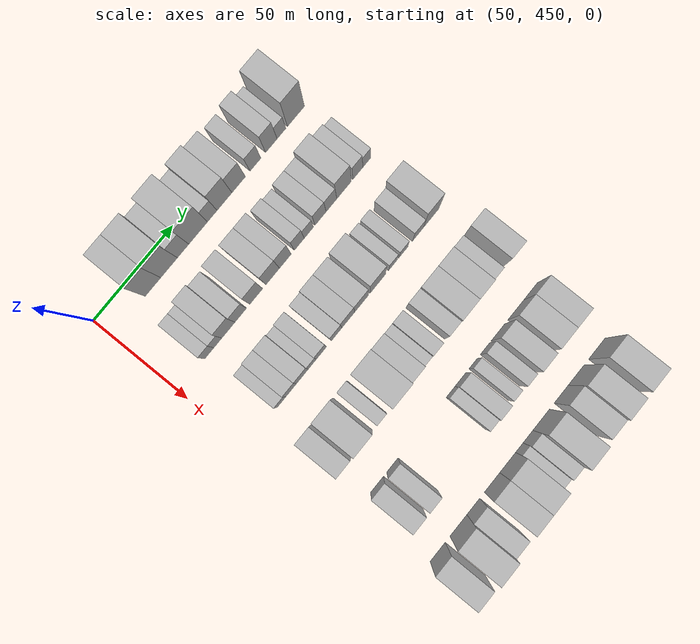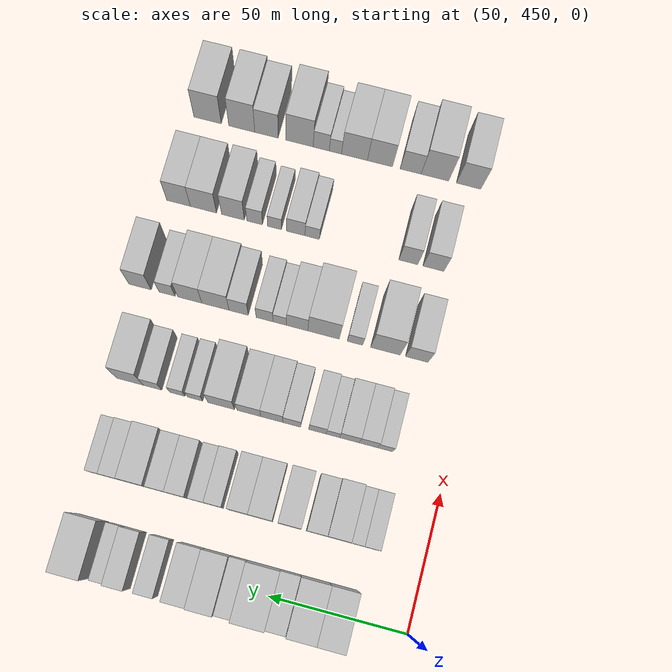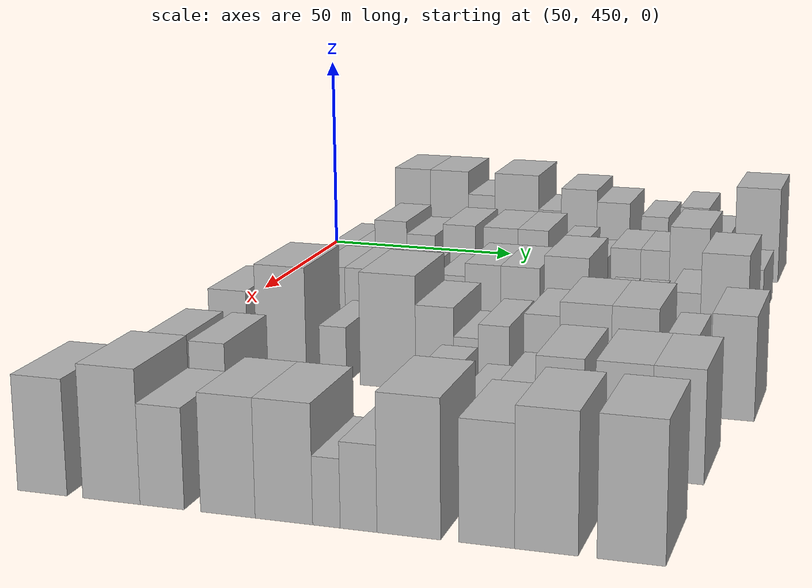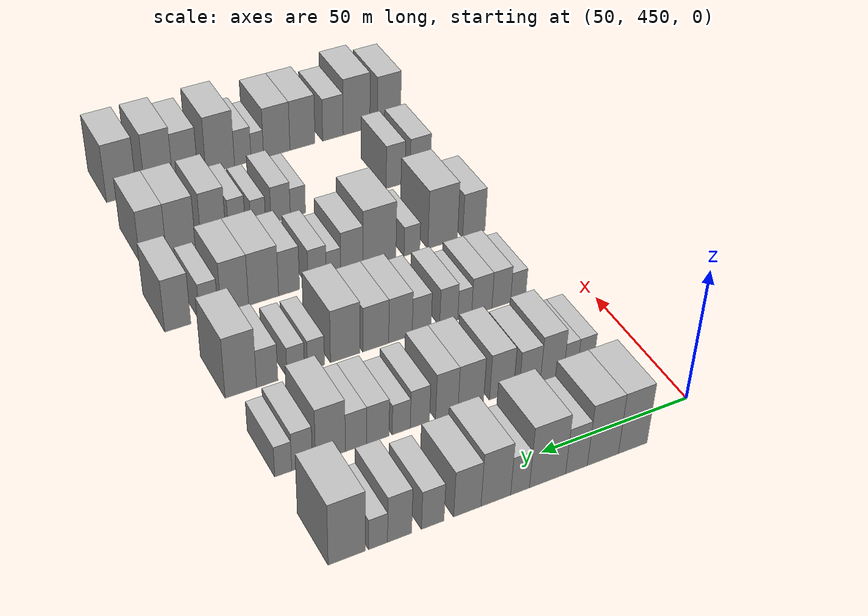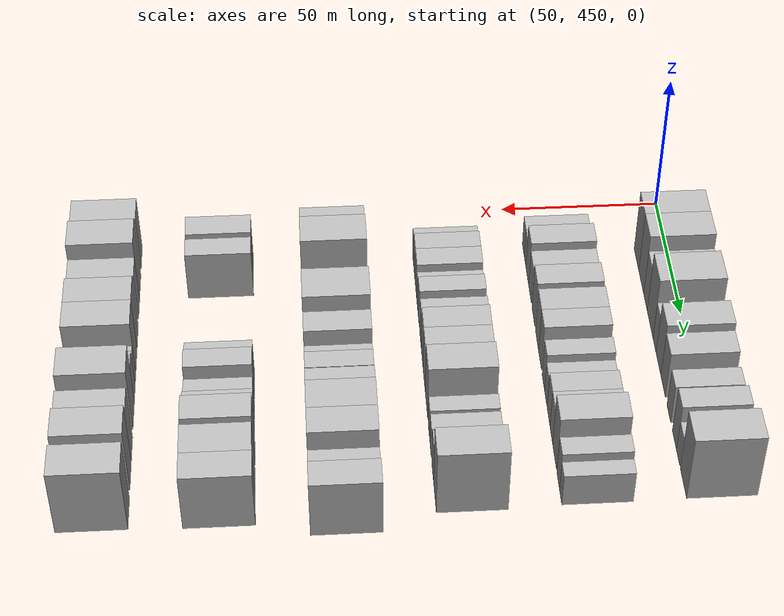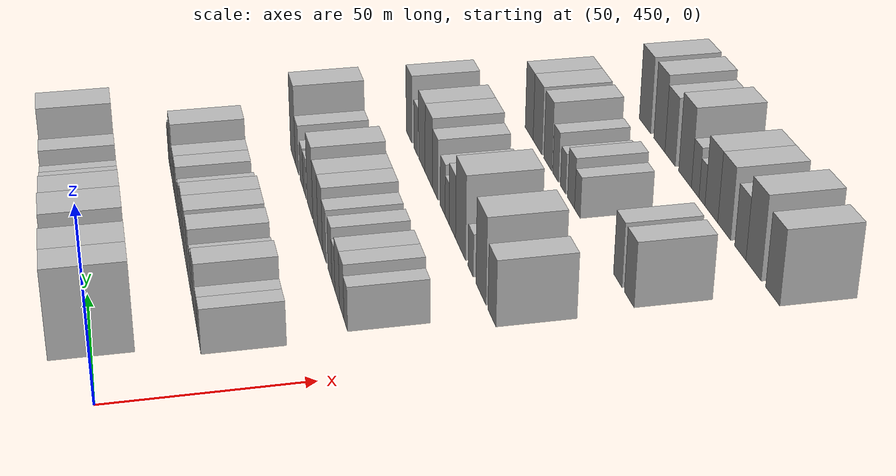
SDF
<sdf version="1.6">
 <world name="default">
  <model name="building_109">
   <static>1</static>
   <pose>50.0000 475.6765 0 0.000000 0.000000 0.000000</pose>
   <link name="link">
    <pose>0 0 12.00 0 0 0</pose>
    <collision name="collision"><geometry><box><size>20.0000 9.7938 24.0000</size></box></geometry></collision>
    <visual name="visual">
     <cast_shadows>0</cast_shadows>
     <geometry><box><size>20.0000 9.7938 24.0000</size></box></geometry>
     <material>
      <script>
       <uri>model://HANNAS_wall/materials/scripts</uri>
       <uri>model://HANNAS_wall/materials/textures</uri>
       <name>vrc/HANNAS_wall</name>
      </script>
     </material>
    </visual>
   </link>
  </model>
  <model name="building_110">
   <static>1</static>
   <pose>50.0000 485.7956 0 0.000000 0.000000 0.000000</pose>
   <link name="link">
    <pose>0 0 12.00 0 0 0</pose>
    <collision name="collision"><geometry><box><size>20.0000 10.4443 24.0000</size></box></geometry></collision>
    <visual name="visual">
     <cast_shadows>0</cast_shadows>
     <geometry><box><size>20.0000 10.4443 24.0000</size></box></geometry>
     <material>
      <script>
       <uri>model://HANNAS_wall/materials/scripts</uri>
       <uri>model://HANNAS_wall/materials/textures</uri>
       <name>vrc/HANNAS_wall</name>
      </script>
     </material>
    </visual>
   </link>
  </model>
  <model name="building_111">
   <static>1</static>
   <pose>50.0000 494.6215 0 0.000000 0.000000 0.000000</pose>
   <link name="link">
    <pose>0 0 9.00 0 0 0</pose>
    <collision name="collision"><geometry><box><size>20.0000 7.2075 18.0000</size></box></geometry></collision>
    <visual name="visual">
     <cast_shadows>0</cast_shadows>
     <geometry><box><size>20.0000 7.2075 18.0000</size></box></geometry>
     <material>
      <script>
       <uri>model://HANNAS_wall/materials/scripts</uri>
       <uri>model://HANNAS_wall/materials/textures</uri>
       <name>vrc/HANNAS_wall</name>
      </script>
     </material>
    </visual>
   </link>
  </model>
  <model name="building_112">
   <static>1</static>
   <pose>50.0000 504.1445 0 0.000000 0.000000 0.000000</pose>
   <link name="link">
    <pose>0 0 12.00 0 0 0</pose>
    <collision name="collision"><geometry><box><size>20.0000 11.8384 24.0000</size></box></geometry></collision>
    <visual name="visual">
     <cast_shadows>0</cast_shadows>
     <geometry><box><size>20.0000 11.8384 24.0000</size></box></geometry>
     <material>
      <script>
       <uri>model://HANNAS_wall/materials/scripts</uri>
       <uri>model://HANNAS_wall/materials/textures</uri>
       <name>vrc/HANNAS_wall</name>
      </script>
     </material>
    </visual>
   </link>
  </model>
  <model name="building_113">
   <static>1</static>
   <pose>50.0000 513.0983 0 0.000000 0.000000 0.000000</pose>
   <link name="link">
    <pose>0 0 7.50 0 0 0</pose>
    <collision name="collision"><geometry><box><size>20.0000 6.0691 15.0000</size></box></geometry></collision>
    <visual name="visual">
     <cast_shadows>0</cast_shadows>
     <geometry><box><size>20.0000 6.0691 15.0000</size></box></geometry>
     <material>
      <script>
       <uri>model://HANNAS_wall/materials/scripts</uri>
       <uri>model://HANNAS_wall/materials/textures</uri>
       <name>vrc/HANNAS_wall</name>
      </script>
     </material>
    </visual>
   </link>
  </model>
  <model name="building_114">
   <static>1</static>
   <pose>50.0000 520.8647 0 0.000000 0.000000 0.000000</pose>
   <link name="link">
    <pose>0 0 10.50 0 0 0</pose>
    <collision name="collision"><geometry><box><size>20.0000 9.4637 21.0000</size></box></geometry></collision>
    <visual name="visual">
     <cast_shadows>0</cast_shadows>
     <geometry><box><size>20.0000 9.4637 21.0000</size></box></geometry>
     <material>
      <script>
       <uri>model://HANNAS_wall/materials/scripts</uri>
       <uri>model://HANNAS_wall/materials/textures</uri>
       <name>vrc/HANNAS_wall</name>
      </script>
     </material>
    </visual>
   </link>
  </model>
  <model name="building_115">
   <static>1</static>
   <pose>50.0000 529.9032 0 0.000000 0.000000 0.000000</pose>
   <link name="link">
    <pose>0 0 9.00 0 0 0</pose>
    <collision name="collision"><geometry><box><size>20.0000 8.6132 18.0000</size></box></geometry></collision>
    <visual name="visual">
     <cast_shadows>0</cast_shadows>
     <geometry><box><size>20.0000 8.6132 18.0000</size></box></geometry>
     <material>
      <script>
       <uri>model://HANNAS_wall/materials/scripts</uri>
       <uri>model://HANNAS_wall/materials/textures</uri>
       <name>vrc/HANNAS_wall</name>
      </script>
     </material>
    </visual>
   </link>
  </model>
  <model name="building_116">
   <static>1</static>
   <pose>50.0000 540.7052 0 0.000000 0.000000 0.000000</pose>
   <link name="link">
    <pose>0 0 7.50 0 0 0</pose>
    <collision name="collision"><geometry><box><size>20.0000 6.9908 15.0000</size></box></geometry></collision>
    <visual name="visual">
     <cast_shadows>0</cast_shadows>
     <geometry><box><size>20.0000 6.9908 15.0000</size></box></geometry>
     <material>
      <script>
       <uri>model://HANNAS_wall/materials/scripts</uri>
       <uri>model://HANNAS_wall/materials/textures</uri>
       <name>vrc/HANNAS_wall</name>
      </script>
     </material>
    </visual>
   </link>
  </model>
  <model name="building_117">
   <static>1</static>
   <pose>50.0000 550.8893 0 0.000000 0.000000 0.000000</pose>
   <link name="link">
    <pose>0 0 9.00 0 0 0</pose>
    <collision name="collision"><geometry><box><size>20.0000 7.3773 18.0000</size></box></geometry></collision>
    <visual name="visual">
     <cast_shadows>0</cast_shadows>
     <geometry><box><size>20.0000 7.3773 18.0000</size></box></geometry>
     <material>
      <script>
       <uri>model://HANNAS_wall/materials/scripts</uri>
       <uri>model://HANNAS_wall/materials/textures</uri>
       <name>vrc/HANNAS_wall</name>
      </script>
     </material>
    </visual>
   </link>
  </model>
  <model name="building_118">
   <static>1</static>
   <pose>50.0000 557.4244 0 0.000000 0.000000 0.000000</pose>
   <link name="link">
    <pose>0 0 6.00 0 0 0</pose>
    <collision name="collision"><geometry><box><size>20.0000 5.6929 12.0000</size></box></geometry></collision>
    <visual name="visual">
     <cast_shadows>0</cast_shadows>
     <geometry><box><size>20.0000 5.6929 12.0000</size></box></geometry>
     <material>
      <script>
       <uri>model://HANNAS_wall/materials/scripts</uri>
       <uri>model://HANNAS_wall/materials/textures</uri>
       <name>vrc/HANNAS_wall</name>
      </script>
     </material>
    </visual>
   </link>
  </model>
  <model name="building_119">
   <static>1</static>
   <pose>50.0000 566.7959 0 0.000000 0.000000 0.000000</pose>
   <link name="link">
    <pose>0 0 12.00 0 0 0</pose>
    <collision name="collision"><geometry><box><size>20.0000 11.0499 24.0000</size></box></geometry></collision>
    <visual name="visual">
     <cast_shadows>0</cast_shadows>
     <geometry><box><size>20.0000 11.0499 24.0000</size></box></geometry>
     <material>
      <script>
       <uri>model://HANNAS_wall/materials/scripts</uri>
       <uri>model://HANNAS_wall/materials/textures</uri>
       <name>vrc/HANNAS_wall</name>
      </script>
     </material>
    </visual>
   </link>
  </model>
  <model name="building_242">
   <static>1</static>
   <pose>85.0000 469.5449 0 0.000000 0.000000 0.000000</pose>
   <link name="link">
    <pose>0 0 6.00 0 0 0</pose>
    <collision name="collision"><geometry><box><size>20.0000 5.7727 12.0000</size></box></geometry></collision>
    <visual name="visual">
     <cast_shadows>0</cast_shadows>
     <geometry><box><size>20.0000 5.7727 12.0000</size></box></geometry>
     <material>
      <script>
       <uri>model://HANNAS_wall/materials/scripts</uri>
       <uri>model://HANNAS_wall/materials/textures</uri>
       <name>vrc/HANNAS_wall</name>
      </script>
     </material>
    </visual>
   </link>
  </model>
  <model name="building_243">
   <static>1</static>
   <pose>85.0000 474.9047 0 0.000000 0.000000 0.000000</pose>
   <link name="link">
    <pose>0 0 6.00 0 0 0</pose>
    <collision name="collision"><geometry><box><size>20.0000 4.9469 12.0000</size></box></geometry></collision>
    <visual name="visual">
     <cast_shadows>0</cast_shadows>
     <geometry><box><size>20.0000 4.9469 12.0000</size></box></geometry>
     <material>
      <script>
       <uri>model://HANNAS_wall/materials/scripts</uri>
       <uri>model://HANNAS_wall/materials/textures</uri>
       <name>vrc/HANNAS_wall</name>
      </script>
     </material>
    </visual>
   </link>
  </model>
  <model name="building_244">
   <static>1</static>
   <pose>85.0000 481.4790 0 0.000000 0.000000 0.000000</pose>
   <link name="link">
    <pose>0 0 9.00 0 0 0</pose>
    <collision name="collision"><geometry><box><size>20.0000 8.2018 18.0000</size></box></geometry></collision>
    <visual name="visual">
     <cast_shadows>0</cast_shadows>
     <geometry><box><size>20.0000 8.2018 18.0000</size></box></geometry>
     <material>
      <script>
       <uri>model://HANNAS_wall/materials/scripts</uri>
       <uri>model://HANNAS_wall/materials/textures</uri>
       <name>vrc/HANNAS_wall</name>
      </script>
     </material>
    </visual>
   </link>
  </model>
  <model name="building_245">
   <static>1</static>
   <pose>85.0000 489.2373 0 0.000000 0.000000 0.000000</pose>
   <link name="link">
    <pose>0 0 7.50 0 0 0</pose>
    <collision name="collision"><geometry><box><size>20.0000 7.3146 15.0000</size></box></geometry></collision>
    <visual name="visual">
     <cast_shadows>0</cast_shadows>
     <geometry><box><size>20.0000 7.3146 15.0000</size></box></geometry>
     <material>
      <script>
       <uri>model://HANNAS_wall/materials/scripts</uri>
       <uri>model://HANNAS_wall/materials/textures</uri>
       <name>vrc/HANNAS_wall</name>
      </script>
     </material>
    </visual>
   </link>
  </model>
  <model name="building_246">
   <static>1</static>
   <pose>85.0000 499.0141 0 0.000000 0.000000 0.000000</pose>
   <link name="link">
    <pose>0 0 9.00 0 0 0</pose>
    <collision name="collision"><geometry><box><size>20.0000 8.2391 18.0000</size></box></geometry></collision>
    <visual name="visual">
     <cast_shadows>0</cast_shadows>
     <geometry><box><size>20.0000 8.2391 18.0000</size></box></geometry>
     <material>
      <script>
       <uri>model://HANNAS_wall/materials/scripts</uri>
       <uri>model://HANNAS_wall/materials/textures</uri>
       <name>vrc/HANNAS_wall</name>
      </script>
     </material>
    </visual>
   </link>
  </model>
  <model name="building_247">
   <static>1</static>
   <pose>85.0000 509.4492 0 0.000000 0.000000 0.000000</pose>
   <link name="link">
    <pose>0 0 9.00 0 0 0</pose>
    <collision name="collision"><geometry><box><size>20.0000 8.6312 18.0000</size></box></geometry></collision>
    <visual name="visual">
     <cast_shadows>0</cast_shadows>
     <geometry><box><size>20.0000 8.6312 18.0000</size></box></geometry>
     <material>
      <script>
       <uri>model://HANNAS_wall/materials/scripts</uri>
       <uri>model://HANNAS_wall/materials/textures</uri>
       <name>vrc/HANNAS_wall</name>
      </script>
     </material>
    </visual>
   </link>
  </model>
  <model name="building_248">
   <static>1</static>
   <pose>85.0000 517.5105 0 0.000000 0.000000 0.000000</pose>
   <link name="link">
    <pose>0 0 9.00 0 0 0</pose>
    <collision name="collision"><geometry><box><size>20.0000 7.4914 18.0000</size></box></geometry></collision>
    <visual name="visual">
     <cast_shadows>0</cast_shadows>
     <geometry><box><size>20.0000 7.4914 18.0000</size></box></geometry>
     <material>
      <script>
       <uri>model://HANNAS_wall/materials/scripts</uri>
       <uri>model://HANNAS_wall/materials/textures</uri>
       <name>vrc/HANNAS_wall</name>
      </script>
     </material>
    </visual>
   </link>
  </model>
  <model name="building_249">
   <static>1</static>
   <pose>85.0000 526.4280 0 0.000000 0.000000 0.000000</pose>
   <link name="link">
    <pose>0 0 7.50 0 0 0</pose>
    <collision name="collision"><geometry><box><size>20.0000 6.3435 15.0000</size></box></geometry></collision>
    <visual name="visual">
     <cast_shadows>0</cast_shadows>
     <geometry><box><size>20.0000 6.3435 15.0000</size></box></geometry>
     <material>
      <script>
       <uri>model://HANNAS_wall/materials/scripts</uri>
       <uri>model://HANNAS_wall/materials/textures</uri>
       <name>vrc/HANNAS_wall</name>
      </script>
     </material>
    </visual>
   </link>
  </model>
  <model name="building_250">
   <static>1</static>
   <pose>85.0000 532.5392 0 0.000000 0.000000 0.000000</pose>
   <link name="link">
    <pose>0 0 6.00 0 0 0</pose>
    <collision name="collision"><geometry><box><size>20.0000 5.8789 12.0000</size></box></geometry></collision>
    <visual name="visual">
     <cast_shadows>0</cast_shadows>
     <geometry><box><size>20.0000 5.8789 12.0000</size></box></geometry>
     <material>
      <script>
       <uri>model://HANNAS_wall/materials/scripts</uri>
       <uri>model://HANNAS_wall/materials/textures</uri>
       <name>vrc/HANNAS_wall</name>
      </script>
     </material>
    </visual>
   </link>
  </model>
  <model name="building_251">
   <static>1</static>
   <pose>85.0000 540.0758 0 0.000000 0.000000 0.000000</pose>
   <link name="link">
    <pose>0 0 7.50 0 0 0</pose>
    <collision name="collision"><geometry><box><size>20.0000 7.1943 15.0000</size></box></geometry></collision>
    <visual name="visual">
     <cast_shadows>0</cast_shadows>
     <geometry><box><size>20.0000 7.1943 15.0000</size></box></geometry>
     <material>
      <script>
       <uri>model://HANNAS_wall/materials/scripts</uri>
       <uri>model://HANNAS_wall/materials/textures</uri>
       <name>vrc/HANNAS_wall</name>
      </script>
     </material>
    </visual>
   </link>
  </model>
  <model name="building_252">
   <static>1</static>
   <pose>85.0000 547.1020 0 0.000000 0.000000 0.000000</pose>
   <link name="link">
    <pose>0 0 7.50 0 0 0</pose>
    <collision name="collision"><geometry><box><size>20.0000 6.8582 15.0000</size></box></geometry></collision>
    <visual name="visual">
     <cast_shadows>0</cast_shadows>
     <geometry><box><size>20.0000 6.8582 15.0000</size></box></geometry>
     <material>
      <script>
       <uri>model://HANNAS_wall/materials/scripts</uri>
       <uri>model://HANNAS_wall/materials/textures</uri>
       <name>vrc/HANNAS_wall</name>
      </script>
     </material>
    </visual>
   </link>
  </model>
  <model name="building_253">
   <static>1</static>
   <pose>85.0000 555.2245 0 0.000000 0.000000 0.000000</pose>
   <link name="link">
    <pose>0 0 10.50 0 0 0</pose>
    <collision name="collision"><geometry><box><size>20.0000 9.3867 21.0000</size></box></geometry></collision>
    <visual name="visual">
     <cast_shadows>0</cast_shadows>
     <geometry><box><size>20.0000 9.3867 21.0000</size></box></geometry>
     <material>
      <script>
       <uri>model://HANNAS_wall/materials/scripts</uri>
       <uri>model://HANNAS_wall/materials/textures</uri>
       <name>vrc/HANNAS_wall</name>
      </script>
     </material>
    </visual>
   </link>
  </model>
  <model name="building_254">
   <static>1</static>
   <pose>85.0000 564.1269 0 0.000000 0.000000 0.000000</pose>
   <link name="link">
    <pose>0 0 7.50 0 0 0</pose>
    <collision name="collision"><geometry><box><size>20.0000 6.4183 15.0000</size></box></geometry></collision>
    <visual name="visual">
     <cast_shadows>0</cast_shadows>
     <geometry><box><size>20.0000 6.4183 15.0000</size></box></geometry>
     <material>
      <script>
       <uri>model://HANNAS_wall/materials/scripts</uri>
       <uri>model://HANNAS_wall/materials/textures</uri>
       <name>vrc/HANNAS_wall</name>
      </script>
     </material>
    </visual>
   </link>
  </model>
  <model name="building_255">
   <static>1</static>
   <pose>85.0000 569.9701 0 0.000000 0.000000 0.000000</pose>
   <link name="link">
    <pose>0 0 6.00 0 0 0</pose>
    <collision name="collision"><geometry><box><size>20.0000 5.2680 12.0000</size></box></geometry></collision>
    <visual name="visual">
     <cast_shadows>0</cast_shadows>
     <geometry><box><size>20.0000 5.2680 12.0000</size></box></geometry>
     <material>
      <script>
       <uri>model://HANNAS_wall/materials/scripts</uri>
       <uri>model://HANNAS_wall/materials/textures</uri>
       <name>vrc/HANNAS_wall</name>
      </script>
     </material>
    </visual>
   </link>
  </model>
  <model name="building_369">
   <static>1</static>
   <pose>120.0000 472.8798 0 0.000000 0.000000 0.000000</pose>
   <link name="link">
    <pose>0 0 6.00 0 0 0</pose>
    <collision name="collision"><geometry><box><size>20.0000 5.5478 12.0000</size></box></geometry></collision>
    <visual name="visual">
     <cast_shadows>0</cast_shadows>
     <geometry><box><size>20.0000 5.5478 12.0000</size></box></geometry>
     <material>
      <script>
       <uri>model://HANNAS_wall/materials/scripts</uri>
       <uri>model://HANNAS_wall/materials/textures</uri>
       <name>vrc/HANNAS_wall</name>
      </script>
     </material>
    </visual>
   </link>
  </model>
  <model name="building_370">
   <static>1</static>
   <pose>120.0000 479.0655 0 0.000000 0.000000 0.000000</pose>
   <link name="link">
    <pose>0 0 7.50 0 0 0</pose>
    <collision name="collision"><geometry><box><size>20.0000 6.8237 15.0000</size></box></geometry></collision>
    <visual name="visual">
     <cast_shadows>0</cast_shadows>
     <geometry><box><size>20.0000 6.8237 15.0000</size></box></geometry>
     <material>
      <script>
       <uri>model://HANNAS_wall/materials/scripts</uri>
       <uri>model://HANNAS_wall/materials/textures</uri>
       <name>vrc/HANNAS_wall</name>
      </script>
     </material>
    </visual>
   </link>
  </model>
  <model name="building_371">
   <static>1</static>
   <pose>120.0000 486.1355 0 0.000000 0.000000 0.000000</pose>
   <link name="link">
    <pose>0 0 7.50 0 0 0</pose>
    <collision name="collision"><geometry><box><size>20.0000 7.3163 15.0000</size></box></geometry></collision>
    <visual name="visual">
     <cast_shadows>0</cast_shadows>
     <geometry><box><size>20.0000 7.3163 15.0000</size></box></geometry>
     <material>
      <script>
       <uri>model://HANNAS_wall/materials/scripts</uri>
       <uri>model://HANNAS_wall/materials/textures</uri>
       <name>vrc/HANNAS_wall</name>
      </script>
     </material>
    </visual>
   </link>
  </model>
  <model name="building_372">
   <static>1</static>
   <pose>120.0000 492.2712 0 0.000000 0.000000 0.000000</pose>
   <link name="link">
    <pose>0 0 6.00 0 0 0</pose>
    <collision name="collision"><geometry><box><size>20.0000 4.9551 12.0000</size></box></geometry></collision>
    <visual name="visual">
     <cast_shadows>0</cast_shadows>
     <geometry><box><size>20.0000 4.9551 12.0000</size></box></geometry>
     <material>
      <script>
       <uri>model://HANNAS_wall/materials/scripts</uri>
       <uri>model://HANNAS_wall/materials/textures</uri>
       <name>vrc/HANNAS_wall</name>
      </script>
     </material>
    </visual>
   </link>
  </model>
  <model name="building_373">
   <static>1</static>
   <pose>120.0000 497.9798 0 0.000000 0.000000 0.000000</pose>
   <link name="link">
    <pose>0 0 7.50 0 0 0</pose>
    <collision name="collision"><geometry><box><size>20.0000 6.4620 15.0000</size></box></geometry></collision>
    <visual name="visual">
     <cast_shadows>0</cast_shadows>
     <geometry><box><size>20.0000 6.4620 15.0000</size></box></geometry>
     <material>
      <script>
       <uri>model://HANNAS_wall/materials/scripts</uri>
       <uri>model://HANNAS_wall/materials/textures</uri>
       <name>vrc/HANNAS_wall</name>
      </script>
     </material>
    </visual>
   </link>
  </model>
  <model name="building_374">
   <static>1</static>
   <pose>120.0000 507.5246 0 0.000000 0.000000 0.000000</pose>
   <link name="link">
    <pose>0 0 7.50 0 0 0</pose>
    <collision name="collision"><geometry><box><size>20.0000 6.6276 15.0000</size></box></geometry></collision>
    <visual name="visual">
     <cast_shadows>0</cast_shadows>
     <geometry><box><size>20.0000 6.6276 15.0000</size></box></geometry>
     <material>
      <script>
       <uri>model://HANNAS_wall/materials/scripts</uri>
       <uri>model://HANNAS_wall/materials/textures</uri>
       <name>vrc/HANNAS_wall</name>
      </script>
     </material>
    </visual>
   </link>
  </model>
  <model name="building_375">
   <static>1</static>
   <pose>120.0000 514.9357 0 0.000000 0.000000 0.000000</pose>
   <link name="link">
    <pose>0 0 9.00 0 0 0</pose>
    <collision name="collision"><geometry><box><size>20.0000 8.1946 18.0000</size></box></geometry></collision>
    <visual name="visual">
     <cast_shadows>0</cast_shadows>
     <geometry><box><size>20.0000 8.1946 18.0000</size></box></geometry>
     <material>
      <script>
       <uri>model://HANNAS_wall/materials/scripts</uri>
       <uri>model://HANNAS_wall/materials/textures</uri>
       <name>vrc/HANNAS_wall</name>
      </script>
     </material>
    </visual>
   </link>
  </model>
  <model name="building_376">
   <static>1</static>
   <pose>120.0000 523.4618 0 0.000000 0.000000 0.000000</pose>
   <link name="link">
    <pose>0 0 9.00 0 0 0</pose>
    <collision name="collision"><geometry><box><size>20.0000 8.8576 18.0000</size></box></geometry></collision>
    <visual name="visual">
     <cast_shadows>0</cast_shadows>
     <geometry><box><size>20.0000 8.8576 18.0000</size></box></geometry>
     <material>
      <script>
       <uri>model://HANNAS_wall/materials/scripts</uri>
       <uri>model://HANNAS_wall/materials/textures</uri>
       <name>vrc/HANNAS_wall</name>
      </script>
     </material>
    </visual>
   </link>
  </model>
  <model name="building_377">
   <static>1</static>
   <pose>120.0000 533.8659 0 0.000000 0.000000 0.000000</pose>
   <link name="link">
    <pose>0 0 10.50 0 0 0</pose>
    <collision name="collision"><geometry><box><size>20.0000 9.9507 21.0000</size></box></geometry></collision>
    <visual name="visual">
     <cast_shadows>0</cast_shadows>
     <geometry><box><size>20.0000 9.9507 21.0000</size></box></geometry>
     <material>
      <script>
       <uri>model://HANNAS_wall/materials/scripts</uri>
       <uri>model://HANNAS_wall/materials/textures</uri>
       <name>vrc/HANNAS_wall</name>
      </script>
     </material>
    </visual>
   </link>
  </model>
  <model name="building_378">
   <static>1</static>
   <pose>120.0000 543.6728 0 0.000000 0.000000 0.000000</pose>
   <link name="link">
    <pose>0 0 6.00 0 0 0</pose>
    <collision name="collision"><geometry><box><size>20.0000 5.6633 12.0000</size></box></geometry></collision>
    <visual name="visual">
     <cast_shadows>0</cast_shadows>
     <geometry><box><size>20.0000 5.6633 12.0000</size></box></geometry>
     <material>
      <script>
       <uri>model://HANNAS_wall/materials/scripts</uri>
       <uri>model://HANNAS_wall/materials/textures</uri>
       <name>vrc/HANNAS_wall</name>
      </script>
     </material>
    </visual>
   </link>
  </model>
  <model name="building_379">
   <static>1</static>
   <pose>120.0000 550.3977 0 0.000000 0.000000 0.000000</pose>
   <link name="link">
    <pose>0 0 6.00 0 0 0</pose>
    <collision name="collision"><geometry><box><size>20.0000 5.7863 12.0000</size></box></geometry></collision>
    <visual name="visual">
     <cast_shadows>0</cast_shadows>
     <geometry><box><size>20.0000 5.7863 12.0000</size></box></geometry>
     <material>
      <script>
       <uri>model://HANNAS_wall/materials/scripts</uri>
       <uri>model://HANNAS_wall/materials/textures</uri>
       <name>vrc/HANNAS_wall</name>
      </script>
     </material>
    </visual>
   </link>
  </model>
  <model name="building_380">
   <static>1</static>
   <pose>120.0000 559.7766 0 0.000000 0.000000 0.000000</pose>
   <link name="link">
    <pose>0 0 7.50 0 0 0</pose>
    <collision name="collision"><geometry><box><size>20.0000 6.9716 15.0000</size></box></geometry></collision>
    <visual name="visual">
     <cast_shadows>0</cast_shadows>
     <geometry><box><size>20.0000 6.9716 15.0000</size></box></geometry>
     <material>
      <script>
       <uri>model://HANNAS_wall/materials/scripts</uri>
       <uri>model://HANNAS_wall/materials/textures</uri>
       <name>vrc/HANNAS_wall</name>
      </script>
     </material>
    </visual>
   </link>
  </model>
  <model name="building_381">
   <static>1</static>
   <pose>120.0000 568.3370 0 0.000000 0.000000 0.000000</pose>
   <link name="link">
    <pose>0 0 12.00 0 0 0</pose>
    <collision name="collision"><geometry><box><size>20.0000 10.1492 24.0000</size></box></geometry></collision>
    <visual name="visual">
     <cast_shadows>0</cast_shadows>
     <geometry><box><size>20.0000 10.1492 24.0000</size></box></geometry>
     <material>
      <script>
       <uri>model://HANNAS_wall/materials/scripts</uri>
       <uri>model://HANNAS_wall/materials/textures</uri>
       <name>vrc/HANNAS_wall</name>
      </script>
     </material>
    </visual>
   </link>
  </model>
  <model name="building_503">
   <static>1</static>
   <pose>155.0000 469.5367 0 0.000000 0.000000 0.000000</pose>
   <link name="link">
    <pose>0 0 9.00 0 0 0</pose>
    <collision name="collision"><geometry><box><size>20.0000 8.5126 18.0000</size></box></geometry></collision>
    <visual name="visual">
     <cast_shadows>0</cast_shadows>
     <geometry><box><size>20.0000 8.5126 18.0000</size></box></geometry>
     <material>
      <script>
       <uri>model://HANNAS_wall/materials/scripts</uri>
       <uri>model://HANNAS_wall/materials/textures</uri>
       <name>vrc/HANNAS_wall</name>
      </script>
     </material>
    </visual>
   </link>
  </model>
  <model name="building_504">
   <static>1</static>
   <pose>155.0000 481.3526 0 0.000000 0.000000 0.000000</pose>
   <link name="link">
    <pose>0 0 12.00 0 0 0</pose>
    <collision name="collision"><geometry><box><size>20.0000 11.1191 24.0000</size></box></geometry></collision>
    <visual name="visual">
     <cast_shadows>0</cast_shadows>
     <geometry><box><size>20.0000 11.1191 24.0000</size></box></geometry>
     <material>
      <script>
       <uri>model://HANNAS_wall/materials/scripts</uri>
       <uri>model://HANNAS_wall/materials/textures</uri>
       <name>vrc/HANNAS_wall</name>
      </script>
     </material>
    </visual>
   </link>
  </model>
  <model name="building_505">
   <static>1</static>
   <pose>155.0000 492.8375 0 0.000000 0.000000 0.000000</pose>
   <link name="link">
    <pose>0 0 6.00 0 0 0</pose>
    <collision name="collision"><geometry><box><size>20.0000 5.8509 12.0000</size></box></geometry></collision>
    <visual name="visual">
     <cast_shadows>0</cast_shadows>
     <geometry><box><size>20.0000 5.8509 12.0000</size></box></geometry>
     <material>
      <script>
       <uri>model://HANNAS_wall/materials/scripts</uri>
       <uri>model://HANNAS_wall/materials/textures</uri>
       <name>vrc/HANNAS_wall</name>
      </script>
     </material>
    </visual>
   </link>
  </model>
  <model name="building_506">
   <static>1</static>
   <pose>155.0000 504.7531 0 0.000000 0.000000 0.000000</pose>
   <link name="link">
    <pose>0 0 12.00 0 0 0</pose>
    <collision name="collision"><geometry><box><size>20.0000 11.9803 24.0000</size></box></geometry></collision>
    <visual name="visual">
     <cast_shadows>0</cast_shadows>
     <geometry><box><size>20.0000 11.9803 24.0000</size></box></geometry>
     <material>
      <script>
       <uri>model://HANNAS_wall/materials/scripts</uri>
       <uri>model://HANNAS_wall/materials/textures</uri>
       <name>vrc/HANNAS_wall</name>
      </script>
     </material>
    </visual>
   </link>
  </model>
  <model name="building_507">
   <static>1</static>
   <pose>155.0000 514.7688 0 0.000000 0.000000 0.000000</pose>
   <link name="link">
    <pose>0 0 9.00 0 0 0</pose>
    <collision name="collision"><geometry><box><size>20.0000 8.0512 18.0000</size></box></geometry></collision>
    <visual name="visual">
     <cast_shadows>0</cast_shadows>
     <geometry><box><size>20.0000 8.0512 18.0000</size></box></geometry>
     <material>
      <script>
       <uri>model://HANNAS_wall/materials/scripts</uri>
       <uri>model://HANNAS_wall/materials/textures</uri>
       <name>vrc/HANNAS_wall</name>
      </script>
     </material>
    </visual>
   </link>
  </model>
  <model name="building_508">
   <static>1</static>
   <pose>155.0000 521.3901 0 0.000000 0.000000 0.000000</pose>
   <link name="link">
    <pose>0 0 6.00 0 0 0</pose>
    <collision name="collision"><geometry><box><size>20.0000 5.1913 12.0000</size></box></geometry></collision>
    <visual name="visual">
     <cast_shadows>0</cast_shadows>
     <geometry><box><size>20.0000 5.1913 12.0000</size></box></geometry>
     <material>
      <script>
       <uri>model://HANNAS_wall/materials/scripts</uri>
       <uri>model://HANNAS_wall/materials/textures</uri>
       <name>vrc/HANNAS_wall</name>
      </script>
     </material>
    </visual>
   </link>
  </model>
  <model name="building_509">
   <static>1</static>
   <pose>155.0000 527.1887 0 0.000000 0.000000 0.000000</pose>
   <link name="link">
    <pose>0 0 7.50 0 0 0</pose>
    <collision name="collision"><geometry><box><size>20.0000 6.4058 15.0000</size></box></geometry></collision>
    <visual name="visual">
     <cast_shadows>0</cast_shadows>
     <geometry><box><size>20.0000 6.4058 15.0000</size></box></geometry>
     <material>
      <script>
       <uri>model://HANNAS_wall/materials/scripts</uri>
       <uri>model://HANNAS_wall/materials/textures</uri>
       <name>vrc/HANNAS_wall</name>
      </script>
     </material>
    </visual>
   </link>
  </model>
  <model name="building_510">
   <static>1</static>
   <pose>155.0000 537.0555 0 0.000000 0.000000 0.000000</pose>
   <link name="link">
    <pose>0 0 9.00 0 0 0</pose>
    <collision name="collision"><geometry><box><size>20.0000 7.3277 18.0000</size></box></geometry></collision>
    <visual name="visual">
     <cast_shadows>0</cast_shadows>
     <geometry><box><size>20.0000 7.3277 18.0000</size></box></geometry>
     <material>
      <script>
       <uri>model://HANNAS_wall/materials/scripts</uri>
       <uri>model://HANNAS_wall/materials/textures</uri>
       <name>vrc/HANNAS_wall</name>
      </script>
     </material>
    </visual>
   </link>
  </model>
  <model name="building_511">
   <static>1</static>
   <pose>155.0000 545.9219 0 0.000000 0.000000 0.000000</pose>
   <link name="link">
    <pose>0 0 10.50 0 0 0</pose>
    <collision name="collision"><geometry><box><size>20.0000 10.4052 21.0000</size></box></geometry></collision>
    <visual name="visual">
     <cast_shadows>0</cast_shadows>
     <geometry><box><size>20.0000 10.4052 21.0000</size></box></geometry>
     <material>
      <script>
       <uri>model://HANNAS_wall/materials/scripts</uri>
       <uri>model://HANNAS_wall/materials/textures</uri>
       <name>vrc/HANNAS_wall</name>
      </script>
     </material>
    </visual>
   </link>
  </model>
  <model name="building_512">
   <static>1</static>
   <pose>155.0000 555.8138 0 0.000000 0.000000 0.000000</pose>
   <link name="link">
    <pose>0 0 10.50 0 0 0</pose>
    <collision name="collision"><geometry><box><size>20.0000 9.3787 21.0000</size></box></geometry></collision>
    <visual name="visual">
     <cast_shadows>0</cast_shadows>
     <geometry><box><size>20.0000 9.3787 21.0000</size></box></geometry>
     <material>
      <script>
       <uri>model://HANNAS_wall/materials/scripts</uri>
       <uri>model://HANNAS_wall/materials/textures</uri>
       <name>vrc/HANNAS_wall</name>
      </script>
     </material>
    </visual>
   </link>
  </model>
  <model name="building_513">
   <static>1</static>
   <pose>155.0000 564.6012 0 0.000000 0.000000 0.000000</pose>
   <link name="link">
    <pose>0 0 7.50 0 0 0</pose>
    <collision name="collision"><geometry><box><size>20.0000 6.1959 15.0000</size></box></geometry></collision>
    <visual name="visual">
     <cast_shadows>0</cast_shadows>
     <geometry><box><size>20.0000 6.1959 15.0000</size></box></geometry>
     <material>
      <script>
       <uri>model://HANNAS_wall/materials/scripts</uri>
       <uri>model://HANNAS_wall/materials/textures</uri>
       <name>vrc/HANNAS_wall</name>
      </script>
     </material>
    </visual>
   </link>
  </model>
  <model name="building_514">
   <static>1</static>
   <pose>155.0000 575.0355 0 0.000000 0.000000 0.000000</pose>
   <link name="link">
    <pose>0 0 10.50 0 0 0</pose>
    <collision name="collision"><geometry><box><size>20.0000 8.6728 21.0000</size></box></geometry></collision>
    <visual name="visual">
     <cast_shadows>0</cast_shadows>
     <geometry><box><size>20.0000 8.6728 21.0000</size></box></geometry>
     <material>
      <script>
       <uri>model://HANNAS_wall/materials/scripts</uri>
       <uri>model://HANNAS_wall/materials/textures</uri>
       <name>vrc/HANNAS_wall</name>
      </script>
     </material>
    </visual>
   </link>
  </model>
  <model name="building_627">
   <static>1</static>
   <pose>190.0000 471.5405 0 0.000000 0.000000 0.000000</pose>
   <link name="link">
    <pose>0 0 9.00 0 0 0</pose>
    <collision name="collision"><geometry><box><size>20.0000 8.0216 18.0000</size></box></geometry></collision>
    <visual name="visual">
     <cast_shadows>0</cast_shadows>
     <geometry><box><size>20.0000 8.0216 18.0000</size></box></geometry>
     <material>
      <script>
       <uri>model://HANNAS_wall/materials/scripts</uri>
       <uri>model://HANNAS_wall/materials/textures</uri>
       <name>vrc/HANNAS_wall</name>
      </script>
     </material>
    </visual>
   </link>
  </model>
  <model name="building_628">
   <static>1</static>
   <pose>190.0000 481.1779 0 0.000000 0.000000 0.000000</pose>
   <link name="link">
    <pose>0 0 9.00 0 0 0</pose>
    <collision name="collision"><geometry><box><size>20.0000 7.2533 18.0000</size></box></geometry></collision>
    <visual name="visual">
     <cast_shadows>0</cast_shadows>
     <geometry><box><size>20.0000 7.2533 18.0000</size></box></geometry>
     <material>
      <script>
       <uri>model://HANNAS_wall/materials/scripts</uri>
       <uri>model://HANNAS_wall/materials/textures</uri>
       <name>vrc/HANNAS_wall</name>
      </script>
     </material>
    </visual>
   </link>
  </model>
  <model name="building_629">
   <static>1</static>
   <pose>190.0000 518.2481 0 0.000000 0.000000 0.000000</pose>
   <link name="link">
    <pose>0 0 6.00 0 0 0</pose>
    <collision name="collision"><geometry><box><size>20.0000 5.6290 12.0000</size></box></geometry></collision>
    <visual name="visual">
     <cast_shadows>0</cast_shadows>
     <geometry><box><size>20.0000 5.6290 12.0000</size></box></geometry>
     <material>
      <script>
       <uri>model://HANNAS_wall/materials/scripts</uri>
       <uri>model://HANNAS_wall/materials/textures</uri>
       <name>vrc/HANNAS_wall</name>
      </script>
     </material>
    </visual>
   </link>
  </model>
  <model name="building_630">
   <static>1</static>
   <pose>190.0000 524.6075 0 0.000000 0.000000 0.000000</pose>
   <link name="link">
    <pose>0 0 7.50 0 0 0</pose>
    <collision name="collision"><geometry><box><size>20.0000 7.0898 15.0000</size></box></geometry></collision>
    <visual name="visual">
     <cast_shadows>0</cast_shadows>
     <geometry><box><size>20.0000 7.0898 15.0000</size></box></geometry>
     <material>
      <script>
       <uri>model://HANNAS_wall/materials/scripts</uri>
       <uri>model://HANNAS_wall/materials/textures</uri>
       <name>vrc/HANNAS_wall</name>
      </script>
     </material>
    </visual>
   </link>
  </model>
  <model name="building_631">
   <static>1</static>
   <pose>190.0000 532.8470 0 0.000000 0.000000 0.000000</pose>
   <link name="link">
    <pose>0 0 6.00 0 0 0</pose>
    <collision name="collision"><geometry><box><size>20.0000 5.3893 12.0000</size></box></geometry></collision>
    <visual name="visual">
     <cast_shadows>0</cast_shadows>
     <geometry><box><size>20.0000 5.3893 12.0000</size></box></geometry>
     <material>
      <script>
       <uri>model://HANNAS_wall/materials/scripts</uri>
       <uri>model://HANNAS_wall/materials/textures</uri>
       <name>vrc/HANNAS_wall</name>
      </script>
     </material>
    </visual>
   </link>
  </model>
  <model name="building_632">
   <static>1</static>
   <pose>190.0000 540.5703 0 0.000000 0.000000 0.000000</pose>
   <link name="link">
    <pose>0 0 7.50 0 0 0</pose>
    <collision name="collision"><geometry><box><size>20.0000 6.0572 15.0000</size></box></geometry></collision>
    <visual name="visual">
     <cast_shadows>0</cast_shadows>
     <geometry><box><size>20.0000 6.0572 15.0000</size></box></geometry>
     <material>
      <script>
       <uri>model://HANNAS_wall/materials/scripts</uri>
       <uri>model://HANNAS_wall/materials/textures</uri>
       <name>vrc/HANNAS_wall</name>
      </script>
     </material>
    </visual>
   </link>
  </model>
  <model name="building_633">
   <static>1</static>
   <pose>190.0000 549.0351 0 0.000000 0.000000 0.000000</pose>
   <link name="link">
    <pose>0 0 10.50 0 0 0</pose>
    <collision name="collision"><geometry><box><size>20.0000 8.8725 21.0000</size></box></geometry></collision>
    <visual name="visual">
     <cast_shadows>0</cast_shadows>
     <geometry><box><size>20.0000 8.8725 21.0000</size></box></geometry>
     <material>
      <script>
       <uri>model://HANNAS_wall/materials/scripts</uri>
       <uri>model://HANNAS_wall/materials/textures</uri>
       <name>vrc/HANNAS_wall</name>
      </script>
     </material>
    </visual>
   </link>
  </model>
  <model name="building_634">
   <static>1</static>
   <pose>190.0000 560.5888 0 0.000000 0.000000 0.000000</pose>
   <link name="link">
    <pose>0 0 10.50 0 0 0</pose>
    <collision name="collision"><geometry><box><size>20.0000 10.2350 21.0000</size></box></geometry></collision>
    <visual name="visual">
     <cast_shadows>0</cast_shadows>
     <geometry><box><size>20.0000 10.2350 21.0000</size></box></geometry>
     <material>
      <script>
       <uri>model://HANNAS_wall/materials/scripts</uri>
       <uri>model://HANNAS_wall/materials/textures</uri>
       <name>vrc/HANNAS_wall</name>
      </script>
     </material>
    </visual>
   </link>
  </model>
  <model name="building_635">
   <static>1</static>
   <pose>190.0000 570.3338 0 0.000000 0.000000 0.000000</pose>
   <link name="link">
    <pose>0 0 10.50 0 0 0</pose>
    <collision name="collision"><geometry><box><size>20.0000 9.2551 21.0000</size></box></geometry></collision>
    <visual name="visual">
     <cast_shadows>0</cast_shadows>
     <geometry><box><size>20.0000 9.2551 21.0000</size></box></geometry>
     <material>
      <script>
       <uri>model://HANNAS_wall/materials/scripts</uri>
       <uri>model://HANNAS_wall/materials/textures</uri>
       <name>vrc/HANNAS_wall</name>
      </script>
     </material>
    </visual>
   </link>
  </model>
  <model name="building_752">
   <static>1</static>
   <pose>225.0000 466.1043 0 0.000000 0.000000 0.000000</pose>
   <link name="link">
    <pose>0 0 10.50 0 0 0</pose>
    <collision name="collision"><geometry><box><size>20.0000 9.5127 21.0000</size></box></geometry></collision>
    <visual name="visual">
     <cast_shadows>0</cast_shadows>
     <geometry><box><size>20.0000 9.5127 21.0000</size></box></geometry>
     <material>
      <script>
       <uri>model://HANNAS_wall/materials/scripts</uri>
       <uri>model://HANNAS_wall/materials/textures</uri>
       <name>vrc/HANNAS_wall</name>
      </script>
     </material>
    </visual>
   </link>
  </model>
  <model name="building_753">
   <static>1</static>
   <pose>225.0000 479.2448 0 0.000000 0.000000 0.000000</pose>
   <link name="link">
    <pose>0 0 12.00 0 0 0</pose>
    <collision name="collision"><geometry><box><size>20.0000 10.7682 24.0000</size></box></geometry></collision>
    <visual name="visual">
     <cast_shadows>0</cast_shadows>
     <geometry><box><size>20.0000 10.7682 24.0000</size></box></geometry>
     <material>
      <script>
       <uri>model://HANNAS_wall/materials/scripts</uri>
       <uri>model://HANNAS_wall/materials/textures</uri>
       <name>vrc/HANNAS_wall</name>
      </script>
     </material>
    </visual>
   </link>
  </model>
  <model name="building_754">
   <static>1</static>
   <pose>225.0000 488.7190 0 0.000000 0.000000 0.000000</pose>
   <link name="link">
    <pose>0 0 9.00 0 0 0</pose>
    <collision name="collision"><geometry><box><size>20.0000 8.1804 18.0000</size></box></geometry></collision>
    <visual name="visual">
     <cast_shadows>0</cast_shadows>
     <geometry><box><size>20.0000 8.1804 18.0000</size></box></geometry>
     <material>
      <script>
       <uri>model://HANNAS_wall/materials/scripts</uri>
       <uri>model://HANNAS_wall/materials/textures</uri>
       <name>vrc/HANNAS_wall</name>
      </script>
     </material>
    </visual>
   </link>
  </model>
  <model name="building_755">
   <static>1</static>
   <pose>225.0000 500.7358 0 0.000000 0.000000 0.000000</pose>
   <link name="link">
    <pose>0 0 10.50 0 0 0</pose>
    <collision name="collision"><geometry><box><size>20.0000 9.8532 21.0000</size></box></geometry></collision>
    <visual name="visual">
     <cast_shadows>0</cast_shadows>
     <geometry><box><size>20.0000 9.8532 21.0000</size></box></geometry>
     <material>
      <script>
       <uri>model://HANNAS_wall/materials/scripts</uri>
       <uri>model://HANNAS_wall/materials/textures</uri>
       <name>vrc/HANNAS_wall</name>
      </script>
     </material>
    </visual>
   </link>
  </model>
  <model name="building_756">
   <static>1</static>
   <pose>225.0000 510.7626 0 0.000000 0.000000 0.000000</pose>
   <link name="link">
    <pose>0 0 10.50 0 0 0</pose>
    <collision name="collision"><geometry><box><size>20.0000 10.2005 21.0000</size></box></geometry></collision>
    <visual name="visual">
     <cast_shadows>0</cast_shadows>
     <geometry><box><size>20.0000 10.2005 21.0000</size></box></geometry>
     <material>
      <script>
       <uri>model://HANNAS_wall/materials/scripts</uri>
       <uri>model://HANNAS_wall/materials/textures</uri>
       <name>vrc/HANNAS_wall</name>
      </script>
     </material>
    </visual>
   </link>
  </model>
  <model name="building_757">
   <static>1</static>
   <pose>225.0000 518.2701 0 0.000000 0.000000 0.000000</pose>
   <link name="link">
    <pose>0 0 6.00 0 0 0</pose>
    <collision name="collision"><geometry><box><size>20.0000 4.8144 12.0000</size></box></geometry></collision>
    <visual name="visual">
     <cast_shadows>0</cast_shadows>
     <geometry><box><size>20.0000 4.8144 12.0000</size></box></geometry>
     <material>
      <script>
       <uri>model://HANNAS_wall/materials/scripts</uri>
       <uri>model://HANNAS_wall/materials/textures</uri>
       <name>vrc/HANNAS_wall</name>
      </script>
     </material>
    </visual>
   </link>
  </model>
  <model name="building_758">
   <static>1</static>
   <pose>225.0000 523.8529 0 0.000000 0.000000 0.000000</pose>
   <link name="link">
    <pose>0 0 7.50 0 0 0</pose>
    <collision name="collision"><geometry><box><size>20.0000 6.3511 15.0000</size></box></geometry></collision>
    <visual name="visual">
     <cast_shadows>0</cast_shadows>
     <geometry><box><size>20.0000 6.3511 15.0000</size></box></geometry>
     <material>
      <script>
       <uri>model://HANNAS_wall/materials/scripts</uri>
       <uri>model://HANNAS_wall/materials/textures</uri>
       <name>vrc/HANNAS_wall</name>
      </script>
     </material>
    </visual>
   </link>
  </model>
  <model name="building_759">
   <static>1</static>
   <pose>225.0000 532.4482 0 0.000000 0.000000 0.000000</pose>
   <link name="link">
    <pose>0 0 12.00 0 0 0</pose>
    <collision name="collision"><geometry><box><size>20.0000 10.8395 24.0000</size></box></geometry></collision>
    <visual name="visual">
     <cast_shadows>0</cast_shadows>
     <geometry><box><size>20.0000 10.8395 24.0000</size></box></geometry>
     <material>
      <script>
       <uri>model://HANNAS_wall/materials/scripts</uri>
       <uri>model://HANNAS_wall/materials/textures</uri>
       <name>vrc/HANNAS_wall</name>
      </script>
     </material>
    </visual>
   </link>
  </model>
  <model name="building_760">
   <static>1</static>
   <pose>225.0000 545.5095 0 0.000000 0.000000 0.000000</pose>
   <link name="link">
    <pose>0 0 10.50 0 0 0</pose>
    <collision name="collision"><geometry><box><size>20.0000 9.2831 21.0000</size></box></geometry></collision>
    <visual name="visual">
     <cast_shadows>0</cast_shadows>
     <geometry><box><size>20.0000 9.2831 21.0000</size></box></geometry>
     <material>
      <script>
       <uri>model://HANNAS_wall/materials/scripts</uri>
       <uri>model://HANNAS_wall/materials/textures</uri>
       <name>vrc/HANNAS_wall</name>
      </script>
     </material>
    </visual>
   </link>
  </model>
  <model name="building_761">
   <static>1</static>
   <pose>225.0000 555.3108 0 0.000000 0.000000 0.000000</pose>
   <link name="link">
    <pose>0 0 12.00 0 0 0</pose>
    <collision name="collision"><geometry><box><size>20.0000 10.3194 24.0000</size></box></geometry></collision>
    <visual name="visual">
     <cast_shadows>0</cast_shadows>
     <geometry><box><size>20.0000 10.3194 24.0000</size></box></geometry>
     <material>
      <script>
       <uri>model://HANNAS_wall/materials/scripts</uri>
       <uri>model://HANNAS_wall/materials/textures</uri>
       <name>vrc/HANNAS_wall</name>
      </script>
     </material>
    </visual>
   </link>
  </model>
  <model name="building_762">
   <static>1</static>
   <pose>225.0000 568.9331 0 0.000000 0.000000 0.000000</pose>
   <link name="link">
    <pose>0 0 12.00 0 0 0</pose>
    <collision name="collision"><geometry><box><size>20.0000 10.9253 24.0000</size></box></geometry></collision>
    <visual name="visual">
     <cast_shadows>0</cast_shadows>
     <geometry><box><size>20.0000 10.9253 24.0000</size></box></geometry>
     <material>
      <script>
       <uri>model://HANNAS_wall/materials/scripts</uri>
       <uri>model://HANNAS_wall/materials/textures</uri>
       <name>vrc/HANNAS_wall</name>
      </script>
     </material>
    </visual>
   </link>
  </model>
 </world>
</sdf>
